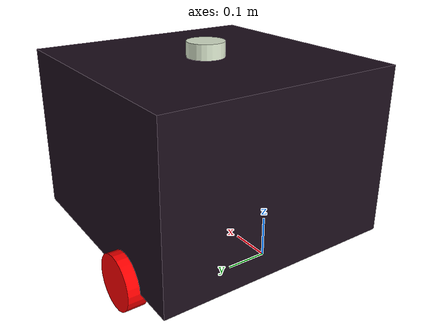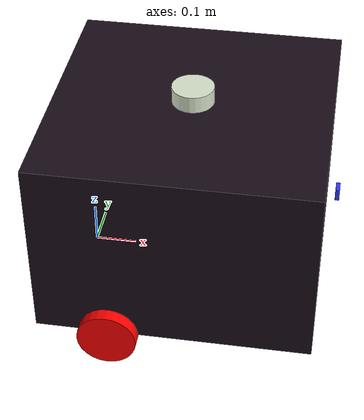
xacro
<?xml version="1.0"?>
<robot xmlns:xacro="http://www.ros.org/wiki/xacro"  name="robot">

    <xacro:arg name="use_ros2_control" default="true"/>
    <xacro:arg name="sim_mode" default="false"/>

    <xacro:include filename="robot_core_diff_drive.xacro" />
    <xacro:include filename="ros2_control.xacro" />

    <xacro:include filename="lidar.xacro" />
    <xacro:include filename="camera.xacro" />

</robot>

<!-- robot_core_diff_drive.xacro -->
<robot xmlns:xacro="http://www.ros.org/wiki/xacro" >

    <xacro:include filename="inertial_macros.xacro"/>

    <material name="white">
        <color rgba="0.85 0.9 0.8 1" />
    </material>

    <material name="orange">
        <color rgba="1 0.3 0.1 1"/>
    </material>

    <material name="blue">
        <color rgba="0.2 0.2 1 1"/>
    </material>

    <material name="black">
        <color rgba="0.1 0.05 0.1 1"/>
    </material>

    <material name="red">
        <color rgba="1 0 0 1"/>
    </material>

    <!-- BASE LINK -->

    <link name="base_link">

    </link>

    <!-- BASE_FOOTPRINT LINK -->

    <joint name="base_footprint_joint" type="fixed">
        <parent link="base_link"/>
        <child link="base_footprint"/>
        <origin xyz="0 0 0" rpy="0 0 0"/>
    </joint>

    <link name="base_footprint">
    </link>

    <!-- CHASSIS LINK -->

    <joint name="chassis_joint" type="fixed">
        <parent link="base_link"/>
        <child link="chassis"/>
        <origin xyz="-0.1 0 0"/>
    </joint>

    <link name="chassis">
        <visual>
            <origin xyz="0.35 0 0.225"/>
            <geometry>
                <box size="0.65 0.65 0.45"/>
            </geometry>
            <material name="black"/>
        </visual>
        <collision>
            <origin xyz="0.315 0 0.225"/>
            <geometry>
                <box size="0.65 0.65 0.45"/>
            </geometry>
        </collision>
        <xacro:inertial_box mass="6" x="0.65" y="0.65" z="0.45">
            <origin xyz="0.315 0 0.225" rpy="0 0 0"/>
        </xacro:inertial_box>
    </link>

    <gazebo reference="chassis">
        <material>Gazebo/Black</material>
    </gazebo>

    <!-- LEFT WHEEL LINK -->

    <joint name="left_back_wheel_joint" type="continuous">
        <parent link="base_link"/>
        <child link="left_back_wheel"/>
        <origin xyz="0.10 0.33 0" rpy="-${pi/2} 0 0" />
        <axis xyz="0 0 1"/>
    </joint>

    <link name="left_back_wheel">
        <visual>
            <geometry>
                <cylinder radius="0.07" length="0.05"/>
            </geometry>
            <material name="red"/>
        </visual>
        <collision>
            <geometry>
                <sphere radius="0.07"/>
            </geometry>
        </collision>
        <xacro:inertial_cylinder mass="2" length="0.05" radius="0.07">
            <origin xyz="0 0 0" rpy="0 0 0"/>
        </xacro:inertial_cylinder>
    </link>

    <gazebo reference="left_back_wheel">
        <material>Gazebo/Red</material>
    </gazebo>

    <!-- RIGHT WHEEL LINK -->

    <joint name="right_back_wheel_joint" type="continuous">
        <parent link="base_link"/>
        <child link="right_back_wheel"/>
        <origin xyz="0.10 -0.33 0" rpy="${pi/2} 0 0" />
        <axis xyz="0 0 -1"/>
    </joint>

    <link name="right_back_wheel">
        <visual>
            <geometry>
                <cylinder radius="0.07" length="0.05"/>
            </geometry>
            <material name="red"/>
        </visual>
        <collision>
            <geometry>
                <sphere radius="0.07"/>
            </geometry>
        </collision>
    <xacro:inertial_cylinder mass="2" length="0.05" radius="0.07">
            <origin xyz="0 0 0" rpy="0 0 0"/>
        </xacro:inertial_cylinder>
    </link>

    <gazebo reference="right_back_wheel">
        <material>Gazebo/Red</material>
    </gazebo>

    <!-- CASTER WHEEL LINK -->

    <joint name="caster_wheel_joint" type="fixed">
        <parent link="chassis"/>
        <child link="caster_wheel"/>
        <origin xyz="0.60 0 0"/>
    </joint>

    <link name="caster_wheel">
        <visual>
            <geometry>
                <sphere radius="0.07"/>
            </geometry>
            <material name="orange"/>
        </visual>
        <collision>
            <geometry>
                <sphere radius="0.07"/>
            </geometry>
        </collision>
        <xacro:inertial_sphere mass="0.3" radius="0.07">
            <origin xyz="0 0 0" rpy="0 0 0"/>
        </xacro:inertial_sphere>
    </link>

    <gazebo reference="caster_wheel">
        <material>Gazebo/Black</material>
        <mu1 value="0.02"/>
        <mu2 value="0.02"/>
    </gazebo>

</robot>

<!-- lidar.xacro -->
<robot xmlns:xacro="http://www.ros.org/wiki/xacro" >

    <joint name="laser_joint" type="fixed">
        <parent link="chassis"/>
        <child link="laser"/>
        <origin xyz="0.35 0 0.47" rpy="0 0 0"/>
    </joint>

    <link name="laser">
        <visual>
            <geometry>
                <cylinder radius="0.05" length="0.04"/>
            </geometry>
            <material name="white"/>
        </visual>
        <collision>
            <geometry>
                <cylinder radius="0.05" length="0.04"/>
            </geometry>
        </collision>
        <xacro:inertial_cylinder mass="0.1" length="0.04" radius="0.05">
            <origin xyz="0 0 0" rpy="0 0 0"/>
        </xacro:inertial_cylinder>
    </link>

    <gazebo reference="laser">
        <material>Gazebo/Grey</material>

        <sensor name="laser" type="ray">
            <pose> 0 0 0 0 0 0 </pose>
            <visualize>false</visualize>
            <update_rate>10</update_rate>
            <ray>
                <scan>
                    <horizontal>
                        <samples>360</samples>
                        <resolution>1</resolution>
                        <min_angle>-3.14</min_angle>
                        <max_angle>3.14</max_angle>
                    </horizontal>
                </scan>
                <range>
                    <resolution>0.01</resolution>
                    <min>0.5</min>
                    <max>16</max>
                </range>
            </ray>
            <plugin name="laser_controller" filename="libgazebo_ros_ray_sensor.so">
                <ros>
                    <argument>~/out:=scan</argument>
                </ros>
                <output_type>sensor_msgs/LaserScan</output_type>
                <frame_name>laser</frame_name>
            </plugin>
        </sensor>
    </gazebo>

</robot>

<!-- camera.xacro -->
<robot xmlns:xacro="http://www.ros.org/wiki/xacro" >

    <joint name="camera_joint" type="fixed">
        <parent link="chassis"/>
        <child link="camera_link"/>
        <origin xyz="0.7 0 0.225" rpy="0 0 0"/>
    </joint>

    <link name="camera_link">
        <visual>
            <geometry>
                <box size="0.010 0.03 0.03"/>
            </geometry>
            <material name="blue"/>
        </visual>
    </link>

    <joint name="camera_optical_joint" type="fixed">
        <parent link="camera_link"/>
        <child link="camera_link_optical"/>
        <origin xyz="0 0 0" rpy="${-pi/2} 0 ${-pi/2}"/>
    </joint>

    <link name="camera_link_optical"></link>

    <gazebo reference="camera_link">
        <material>Gazebo/Blue</material>

        <sensor name="camera" type="camera">
            <pose> 0 0 0 0 0 0 </pose>
            <visualize>false</visualize>
            <update_rate>10</update_rate>
            <camera>
                <horizontal_fov>1.089</horizontal_fov>
                <image>
                    <format>R8G8B8</format>
                    <width>640</width>
                    <height>480</height>
                </image>
                <clip>
                    <near>0.05</near>
                    <far>15.0</far>
                </clip>
            </camera>
            <plugin name="camera_controller" filename="libgazebo_ros_camera.so">
                <frame_name>camera_link_optical</frame_name>
            </plugin>
        </sensor>
    </gazebo>

</robot>
